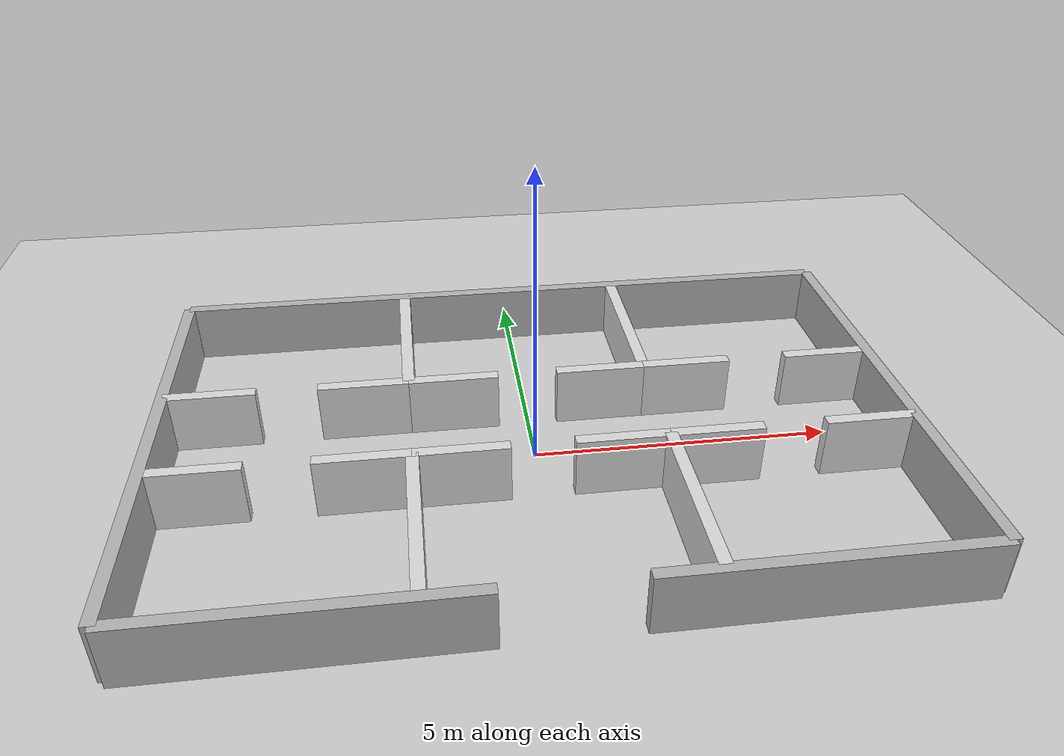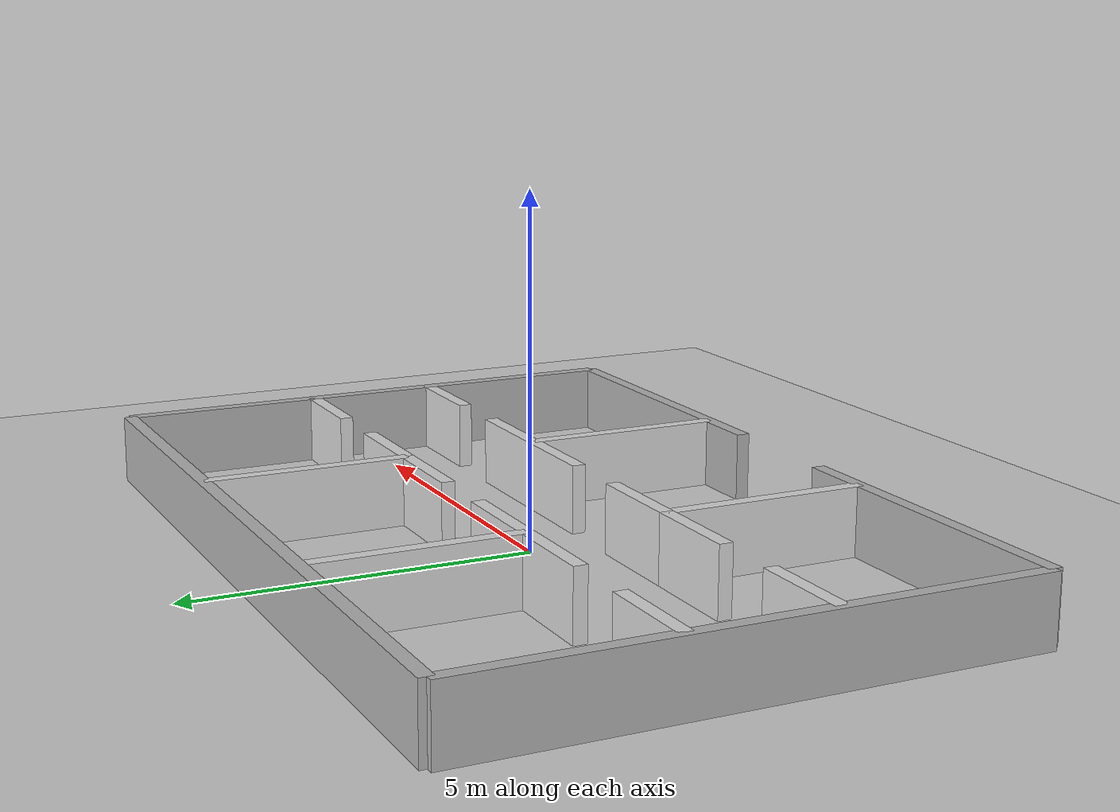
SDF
<?xml version="1.0" ?>
<sdf version="1.6">
  <world name="default">

    <include><uri>model://ground_plane</uri></include>
    <include><uri>model://sun</uri></include>

    <physics type="ode">
      <real_time_update_rate>1000.0</real_time_update_rate>
      <max_step_size>0.001</max_step_size>
      <real_time_factor>1</real_time_factor>
      <ode>
        <solver>
          <type>quick</type>
          <iters>150</iters>
          <sor>1.0</sor>
        </solver>
        <constraints>
          <cfm>0.0</cfm>
          <erp>0.2</erp>
          <contact_max_correcting_vel>100.0</contact_max_correcting_vel>
          <contact_surface_layer>0.001</contact_surface_layer>
        </constraints>
      </ode>
    </physics>

    <model name="wall_north_outer">
      <static>true</static>
      <pose>0 4 0.5 0 0 0</pose>
      <link name="link">
        <collision name="collision"><geometry><box><size>12 0.2 1</size></box></geometry></collision>
        <visual name="visual"><geometry><box><size>12 0.2 1</size></box></geometry><material><ambient>0.7 0.7 0.7 1</ambient></material></visual>
      </link>
    </model>

    <model name="wall_south_outer_left">
      <static>true</static>
      <pose>-3.5 -4 0.5 0 0 0</pose>
      <link name="link">
        <collision name="collision"><geometry><box><size>5 0.2 1</size></box></geometry></collision>
        <visual name="visual"><geometry><box><size>5 0.2 1</size></box></geometry><material><ambient>0.7 0.7 0.7 1</ambient></material></visual>
      </link>
    </model>
    <model name="wall_south_outer_right">
      <static>true</static>
      <pose>3.5 -4 0.5 0 0 0</pose>
      <link name="link">
        <collision name="collision"><geometry><box><size>5 0.2 1</size></box></geometry></collision>
        <visual name="visual"><geometry><box><size>5 0.2 1</size></box></geometry><material><ambient>0.7 0.7 0.7 1</ambient></material></visual>
      </link>
    </model>

    <model name="wall_east_outer">
      <static>true</static>
      <pose>6 0 0.5 0 0 1.5708</pose>
      <link name="link">
        <collision name="collision"><geometry><box><size>8 0.2 1</size></box></geometry></collision>
        <visual name="visual"><geometry><box><size>8 0.2 1</size></box></geometry><material><ambient>0.7 0.7 0.7 1</ambient></material></visual>
      </link>
    </model>
    <model name="wall_west_outer">
      <static>true</static>
      <pose>-6 0 0.5 0 0 1.5708</pose>
      <link name="link">
        <collision name="collision"><geometry><box><size>8 0.2 1</size></box></geometry></collision>
        <visual name="visual"><geometry><box><size>8 0.2 1</size></box></geometry><material><ambient>0.7 0.7 0.7 1</ambient></material></visual>
      </link>
    </model>

    <model name="divider_north_1">
      <static>true</static>
      <pose>-2 2.5 0.5 0 0 1.5708</pose>
      <link name="link">
        <collision name="collision"><geometry><box><size>3 0.2 1</size></box></geometry></collision>
        <visual name="visual"><geometry><box><size>3 0.2 1</size></box></geometry><material><ambient>0.85 0.85 0.85 1</ambient></material></visual>
      </link>
    </model>
    <model name="divider_north_2">
      <static>true</static>
      <pose>2 2.5 0.5 0 0 1.5708</pose>
      <link name="link">
        <collision name="collision"><geometry><box><size>3 0.2 1</size></box></geometry></collision>
        <visual name="visual"><geometry><box><size>3 0.2 1</size></box></geometry><material><ambient>0.85 0.85 0.85 1</ambient></material></visual>
      </link>
    </model>
    <model name="divider_south_1">
      <static>true</static>
      <pose>-2 -2.5 0.5 0 0 1.5708</pose>
      <link name="link">
        <collision name="collision"><geometry><box><size>3 0.2 1</size></box></geometry></collision>
        <visual name="visual"><geometry><box><size>3 0.2 1</size></box></geometry><material><ambient>0.85 0.85 0.85 1</ambient></material></visual>
      </link>
    </model>
    <model name="divider_south_2">
      <static>true</static>
      <pose>2 -2.5 0.5 0 0 1.5708</pose>
      <link name="link">
        <collision name="collision"><geometry><box><size>3 0.2 1</size></box></geometry></collision>
        <visual name="visual"><geometry><box><size>3 0.2 1</size></box></geometry><material><ambient>0.85 0.85 0.85 1</ambient></material></visual>
      </link>
    </model>

    <model name="wall_n1a"><static>true</static><pose>-5.25 1 0.5 0 0 0</pose><link name="link"><collision name="collision"><geometry><box><size>1.5 0.2 1</size></box></geometry></collision><visual name="visual"><geometry><box><size>1.5 0.2 1</size></box></geometry><material><ambient>0.85 0.85 0.85 1</ambient></material></visual></link></model>
    <model name="wall_n1b"><static>true</static><pose>-2.75 1 0.5 0 0 0</pose><link name="link"><collision name="collision"><geometry><box><size>1.5 0.2 1</size></box></geometry></collision><visual name="visual"><geometry><box><size>1.5 0.2 1</size></box></geometry><material><ambient>0.85 0.85 0.85 1</ambient></material></visual></link></model>
    <model name="wall_n2a"><static>true</static><pose>-1.25 1 0.5 0 0 0</pose><link name="link"><collision name="collision"><geometry><box><size>1.5 0.2 1</size></box></geometry></collision><visual name="visual"><geometry><box><size>1.5 0.2 1</size></box></geometry><material><ambient>0.85 0.85 0.85 1</ambient></material></visual></link></model>
    <model name="wall_n2b"><static>true</static><pose>1.25 1 0.5 0 0 0</pose><link name="link"><collision name="collision"><geometry><box><size>1.5 0.2 1</size></box></geometry></collision><visual name="visual"><geometry><box><size>1.5 0.2 1</size></box></geometry><material><ambient>0.85 0.85 0.85 1</ambient></material></visual></link></model>
    <model name="wall_n3a"><static>true</static><pose>2.75 1 0.5 0 0 0</pose><link name="link"><collision name="collision"><geometry><box><size>1.5 0.2 1</size></box></geometry></collision><visual name="visual"><geometry><box><size>1.5 0.2 1</size></box></geometry><material><ambient>0.85 0.85 0.85 1</ambient></material></visual></link></model>
    <model name="wall_n3b"><static>true</static><pose>5.25 1 0.5 0 0 0</pose><link name="link"><collision name="collision"><geometry><box><size>1.5 0.2 1</size></box></geometry></collision><visual name="visual"><geometry><box><size>1.5 0.2 1</size></box></geometry><material><ambient>0.85 0.85 0.85 1</ambient></material></visual></link></model>

    <model name="wall_s1a"><static>true</static><pose>-5.25 -1 0.5 0 0 0</pose><link name="link"><collision name="collision"><geometry><box><size>1.5 0.2 1</size></box></geometry></collision><visual name="visual"><geometry><box><size>1.5 0.2 1</size></box></geometry><material><ambient>0.85 0.85 0.85 1</ambient></material></visual></link></model>
    <model name="wall_s1b"><static>true</static><pose>-2.75 -1 0.5 0 0 0</pose><link name="link"><collision name="collision"><geometry><box><size>1.5 0.2 1</size></box></geometry></collision><visual name="visual"><geometry><box><size>1.5 0.2 1</size></box></geometry><material><ambient>0.85 0.85 0.85 1</ambient></material></visual></link></model>
    <model name="wall_s2a"><static>true</static><pose>-1.25 -1 0.5 0 0 0</pose><link name="link"><collision name="collision"><geometry><box><size>1.5 0.2 1</size></box></geometry></collision><visual name="visual"><geometry><box><size>1.5 0.2 1</size></box></geometry><material><ambient>0.85 0.85 0.85 1</ambient></material></visual></link></model>
    <model name="wall_s2b"><static>true</static><pose>1.25 -1 0.5 0 0 0</pose><link name="link"><collision name="collision"><geometry><box><size>1.5 0.2 1</size></box></geometry></collision><visual name="visual"><geometry><box><size>1.5 0.2 1</size></box></geometry><material><ambient>0.85 0.85 0.85 1</ambient></material></visual></link></model>
    <model name="wall_s3a"><static>true</static><pose>2.75 -1 0.5 0 0 0</pose><link name="link"><collision name="collision"><geometry><box><size>1.5 0.2 1</size></box></geometry></collision><visual name="visual"><geometry><box><size>1.5 0.2 1</size></box></geometry><material><ambient>0.85 0.85 0.85 1</ambient></material></visual></link></model>
    <model name="wall_s3b"><static>true</static><pose>5.25 -1 0.5 0 0 0</pose><link name="link"><collision name="collision"><geometry><box><size>1.5 0.2 1</size></box></geometry></collision><visual name="visual"><geometry><box><size>1.5 0.2 1</size></box></geometry><material><ambient>0.85 0.85 0.85 1</ambient></material></visual></link></model>

  </world>
</sdf>
